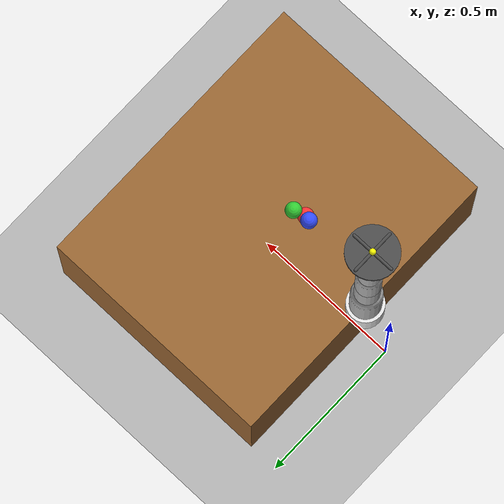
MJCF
<mujoco model="panda_juggle">
  <compiler angle="radian" meshdir="." autolimits="true"/>

  <option timestep="0.002" gravity="0 0 -9.81" integrator="implicitfast">
    <flag contact="enable"/>
  </option>

  <default>
    <default class="panda">
      <joint damping="1.0" armature="0.1"/>
      <geom condim="4" friction="1 0.5 0.01" margin="0.001"/>
      <position kp="200" kv="30"/>
    </default>
    <default class="ball">
      <geom type="sphere" size="0.025" mass="0.05" condim="4"
            friction="0.8 0.3 0.01" solref="0.01 1" solimp="0.9 0.95 0.001"/>
    </default>
  </default>

  <asset>
    <texture type="2d" name="grid" builtin="checker" rgb1="0.8 0.8 0.8" rgb2="0.6 0.6 0.6"
             width="512" height="512"/>
    <material name="grid_mat" texture="grid" texrepeat="4 4" reflectance="0.1"/>
    <material name="robot_mat" rgba="0.7 0.7 0.7 1"/>
    <material name="paddle_mat" rgba="0.3 0.3 0.3 1"/>
    <material name="ball_red" rgba="1.0 0.2 0.2 1"/>
    <material name="ball_green" rgba="0.2 0.8 0.2 1"/>
    <material name="ball_blue" rgba="0.2 0.3 1.0 1"/>
  </asset>

  <worldbody>
    <!-- Floor -->
    <geom name="floor" type="plane" size="2 2 0.01" material="grid_mat"/>

    <!-- Table -->
    <body name="table" pos="0.5 0 0.2">
      <geom type="box" size="0.4 0.5 0.2" rgba="0.6 0.4 0.2 1" mass="100"/>
    </body>

    <!-- Simplified Panda Arm (7-DOF) -->
    <body name="link0" pos="0.1 0 0.4" childclass="panda">
      <geom type="cylinder" size="0.06 0.05" rgba="0.9 0.9 0.9 1" mass="2"/>

      <body name="link1" pos="0 0 0.05">
        <joint name="j1" type="hinge" axis="0 0 1" range="-2.9 2.9"/>
        <geom type="capsule" fromto="0 0 0 0 0 0.15" size="0.05" material="robot_mat" mass="2"/>

        <body name="link2" pos="0 0 0.15">
          <joint name="j2" type="hinge" axis="0 1 0" range="-1.76 1.76"/>
          <geom type="capsule" fromto="0 0 0 0 0 0.15" size="0.04" material="robot_mat" mass="2"/>

          <body name="link3" pos="0 0 0.15">
            <joint name="j3" type="hinge" axis="0 0 1" range="-2.9 2.9"/>
            <geom type="capsule" fromto="0 0 0 0 0 0.12" size="0.04" material="robot_mat" mass="1.5"/>

            <body name="link4" pos="0 0 0.12">
              <joint name="j4" type="hinge" axis="0 -1 0" range="-3.07 0.07"/>
              <geom type="capsule" fromto="0 0 0 0 0 0.12" size="0.035" material="robot_mat" mass="1.5"/>

              <body name="link5" pos="0 0 0.12">
                <joint name="j5" type="hinge" axis="0 0 1" range="-2.9 2.9"/>
                <geom type="capsule" fromto="0 0 0 0 0 0.1" size="0.035" material="robot_mat" mass="1"/>

                <body name="link6" pos="0 0 0.1">
                  <joint name="j6" type="hinge" axis="0 1 0" range="-0.02 3.75"/>
                  <geom type="capsule" fromto="0 0 0 0 0 0.08" size="0.03" material="robot_mat" mass="1"/>

                  <body name="link7" pos="0 0 0.08">
                    <joint name="j7" type="hinge" axis="0 0 1" range="-2.9 2.9"/>
                    <geom type="cylinder" size="0.04 0.02" material="robot_mat" mass="0.5"/>

                    <!-- Paddle (flat disc for juggling) -->
                    <body name="paddle" pos="0 0 0.04">
                      <geom name="paddle_geom" type="cylinder" size="0.08 0.005"
                            material="paddle_mat" mass="0.2"
                            friction="1.5 0.5 0.01" condim="4"/>
                      <!-- Slight rim to help catch -->
                      <geom name="rim1" type="capsule" fromto="-0.07 0 0.005 0.07 0 0.005"
                            size="0.005" material="paddle_mat" mass="0.01"/>
                      <geom name="rim2" type="capsule" fromto="0 -0.07 0.005 0 0.07 0.005"
                            size="0.005" material="paddle_mat" mass="0.01"/>
                      <site name="paddle_site" pos="0 0 0.01" size="0.01" rgba="1 1 0 1"/>
                    </body>

                    <!-- Gripper actuators kept for compatibility -->
                    <body name="left_finger" pos="0 0.02 0.04">
                      <joint name="finger_left" type="slide" axis="0 1 0" range="0 0.04"/>
                      <geom type="box" size="0.001 0.001 0.001" rgba="0.5 0.5 0.5 0" mass="0.01" contype="0" conaffinity="0"/>
                    </body>
                    <body name="right_finger" pos="0 -0.02 0.04">
                      <joint name="finger_right" type="slide" axis="0 -1 0" range="0 0.04"/>
                      <geom type="box" size="0.001 0.001 0.001" rgba="0.5 0.5 0.5 0" mass="0.01" contype="0" conaffinity="0"/>
                    </body>
                  </body>
                </body>
              </body>
            </body>
          </body>
        </body>
      </body>
    </body>

    <!-- Three juggling balls (free joints = 6 DOF each) -->
    <body name="ball_1" pos="0.35 0.0 0.90">
      <joint name="ball_1_free" type="free"/>
      <geom name="ball_1_geom" class="ball" material="ball_red"/>
    </body>

    <body name="ball_2" pos="0.38 0.02 0.95">
      <joint name="ball_2_free" type="free"/>
      <geom name="ball_2_geom" class="ball" material="ball_green"/>
    </body>

    <body name="ball_3" pos="0.32 0.02 1.00">
      <joint name="ball_3_free" type="free"/>
      <geom name="ball_3_geom" class="ball" material="ball_blue"/>
    </body>

    <!-- Lights -->
    <light name="top_light" pos="0.5 0 2.0" dir="0 0 -1" diffuse="0.9 0.9 0.9" castshadow="true"/>
    <light name="side_light" pos="0 1.5 1.5" dir="0 -0.5 -0.5" diffuse="0.4 0.4 0.4"/>

    <!-- Cameras -->
    <camera name="wrist_cam" pos="0.8 0 1.0" xyaxes="0 1 0 -0.5 0 0.5" fovy="70"/>
    <camera name="front_cam" pos="1.5 0 0.9" xyaxes="0 1 0 -0.3 0 0.8" fovy="60"/>
    <camera name="side_cam" pos="0.4 1.2 0.9" xyaxes="-1 0 0 0 -0.3 0.8" fovy="60"/>
  </worldbody>

  <actuator>
    <position class="panda" name="act_j1" joint="j1"/>
    <position class="panda" name="act_j2" joint="j2"/>
    <position class="panda" name="act_j3" joint="j3"/>
    <position class="panda" name="act_j4" joint="j4"/>
    <position class="panda" name="act_j5" joint="j5"/>
    <position class="panda" name="act_j6" joint="j6"/>
    <position class="panda" name="act_j7" joint="j7"/>
    <position name="act_finger_left" joint="finger_left" kp="50"/>
    <position name="act_finger_right" joint="finger_right" kp="50"/>
  </actuator>
</mujoco>
